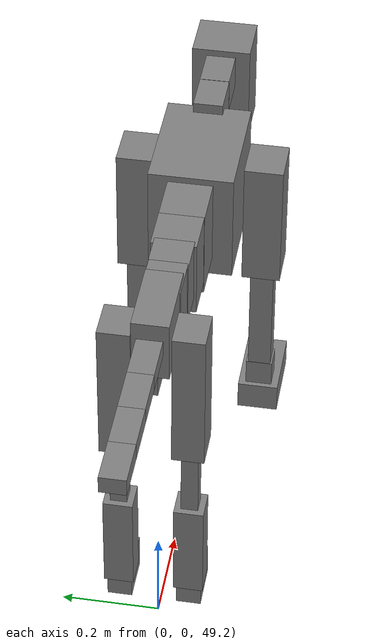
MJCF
<mujoco model="dog">

    <default>
        <joint armature="0.02" stiffness="1" damping="0.2" limited="true"/>
        <geom condim="3" friction="1 0.05 0.05" margin="0.01"/>
        <motor ctrllimited="true" ctrlrange="-1.0 1.0" forcelimited="true" gear="50"/>
    </default>

    <compiler inertiafromgeom="true" angle="radian"/>

    <option timestep="0.016" iterations="50" tolerance="1e-10" solver="Newton" jacobian="dense" cone="pyramidal"/>

    <size nconmax="20000" njmax="60000" nstack="5000000"/>
    <visual>
        <map force="0.1" zfar="30"/>
        <rgba haze="0.15 0.25 0.35 1"/>
        <quality shadowsize="2048"/>
        <global offwidth="800" offheight="800"/>
    </visual>

    <asset>
        <texture type="skybox" builtin="gradient" rgb1="0.3 0.5 0.7" rgb2="0 0 0" width="512" height="512"/>
        <texture name="texplane" type="2d" builtin="checker" rgb1=".2 .3 .4" rgb2=".1 0.15 0.2" width="512" height="512"
                 mark="cross" markrgb=".8 .8 .8"/>
        <texture name="texgeom" type="cube" builtin="flat" mark="cross" width="127" height="1278" rgb1="0.8 0.6 0.4"
                 rgb2="0.8 0.6 0.4" markrgb="1 1 1" random="0.01"/>

        <material name="matplane" reflectance="0.3" texture="texplane" texrepeat="1 1" texuniform="true"/>
        <material name="matgeom" texture="texgeom" texuniform="true" rgba="0.8 0.6 .4 1"/>
    </asset>

    <worldbody>
        <geom name="floor" pos="0 0 0" size="0 0 .25" type="plane" material="matplane" condim="3"/>

        <light directional="false" diffuse=".2 .2 .2" specular="0 0 0" pos="0 0 5" dir="0 0 -1" castshadow="false"/>
        <light mode="targetbodycom" target="torso" directional="false" diffuse=".8 .8 .8" specular="0.3 0.3 0.3"
               pos="0 0 4.0" dir="0 0 -1"/>

        <body name="root" pos="0 0 50">
            <freejoint name="root_1"/>
            <geom type="box" pos="0 0 -0.02" size="0.0774  0.0358  0.063" density="2030"/>

            <body name="spine1" pos="0.054 0 0">
                <joint name="spine1_y" axis="0 1 0" range="0 0.7" limited="true"/>
                <geom type="box" pos="0.02375 0 -0.03" size="0.04375  0.0375  0.05985" density="2030"/>

                <body name="spine2" pos="0.0612 0 0">
                    <joint name="spine2_y" axis="0 1 0" range="-0.15 0.15" limited="true"/>
                    <geom type="box" pos="0.03555  0  -0.04" size="0.04055  0.039  0.06615" density="2030"/>

                    <body name="spine3" pos="0.0730 0 0">
                        <joint name="spine3_y" axis="0 1 0" range="-0.15 0.15" limited="true"/>
                        <geom type="box" pos="0.03555  0  -0.057" size="0.04555  0.0445  0.081" density="2030"/>

                        <body name="spine4" pos="0.0780 0 0">
                            <joint name="spine4_y" axis="0 1 0" range="-0.15 0.15" limited="true"/>
                            <geom type="box" pos="0.05265  0  -0.07" size="0.05265  0.045  0.09135" density="2030"/>

                            <body name="torso" pos="0.1082 0 0">
                                <joint name="torso_y" axis="0 1 0" range="-0.15 0.15" limited="true"/>
                                <geom type="box" pos="0.11925  0  -0.085" size="0.11925  0.085  0.11745"
                                      density="2030"/>

                                <body name="neck1" pos="0.2160  0   0.0180">
                                    <joint name="neck1_y" axis="0 1 0" range="-1.2  -1" limited="true"/>
                                    <geom type="box" pos="0.0423  0  0" size="0.0423  0.03  0.036" density="2325"/>

                                    <body name="neck2" pos="0.0853  0  0">
                                        <joint name="neck2_y" axis="0 1 0" range="0.1  0" limited="true"/>
                                        <geom type="box" pos="0.0423  0  0" size="0.0423  0.03  0.036" density="2325"/>

                                        <body name="head" pos="0.0853  0  0">
                                            <joint name="head_y" axis="0 1 0" range="-0.3  -0.2" limited="true"/>
                                            <geom type="box" pos="0.0531  0  -0.055" size="0.0531  0.06  0.1044"
                                                  density="4030"/>

                                        </body>
                                    </body>
                                </body>

                                <body name="front_shoulder" pos="0.156  0   -0.0480">
                                    <joint name="front_shoulder_y" axis="0 1 0" range="-1 1.5" limited="true"/>
                                    <geom type="box" pos="0 0.13 -0.1107" size="0.0461  0.0394  0.1374" density="1158"/>
                                    <geom type="box" pos="0 -0.13 -0.1107" size="0.0461  0.0394  0.1374"
                                          density="1158"/>

                                    <body name="front_elbow" pos="0  0  -0.2214">
                                        <joint name="front_elbow_y" axis="0 1 0" range="-2 0" limited="true"/>
                                        <geom type="box" pos="0 0.13 -0.1461" size="0.0235  0.0240  0.1461"
                                              density="1081"/>
                                        <geom type="box" pos="0 -0.13 -0.1461" size="0.0235  0.0240  0.1461"
                                              density="1081"/>

                                        <body name="front_wrist" pos="0  0  -0.2921">
                                            <joint name="front_wrist_y" axis="0 1 0" range="-0.2 0" limited="true"/>
                                            <geom type="box" pos="0 0.13 -0.0300" size="0.0248  0.0275  0.0431"
                                                  density="1664"/>
                                            <geom type="box" pos="0 -0.13 -0.0300" size="0.0248  0.0275  0.0431"
                                                  density="1664"/>

                                            <body name="front_finger_end" pos="0  0  -0.0599">
                                                <joint name="front_finger_y" axis="0 1 0" range="-0.4 1"
                                                       limited="true"/>
                                                <geom type="box" pos="0.0423  0.13  -0.0164"
                                                      size="0.0775  0.0423  0.0314" density="1515"/>
                                                <geom type="box" pos="0.0423  -0.13  -0.0164"
                                                      size="0.0775  0.0423  0.0314" density="1515"/>

                                            </body>

                                        </body>
                                    </body>
                                </body>

                            </body>
                        </body>
                    </body>
                </body>
            </body>

            <body name="back_hip" pos="-0.03 0 -0.018">
                <joint name="back_hip_y" axis="0 1 0" range="-1.5 0.3" limited="true"/>
                <geom type="box" pos="0 0.07 -0.1277" size="0.0402  0.0315  0.1505" density="1154"/>
                <geom type="box" pos="0 -0.07 -0.1277" size="0.0402  0.0315  0.1505" density="1154"/>

                <body name="back_knee" pos="0  0  -0.2554">
                    <joint name="back_knee_y" axis="0 1 0" range="0 2.8" limited="true"/>
                    <geom type="box" pos="0 0.07 -0.0935" size="0.0171  0.0168  0.1090" density="1227"/>
                    <geom type="box" pos="0 -0.07 -0.0935" size="0.0171  0.0168  0.1090" density="1227"/>

                    <body name="back_ankle" pos="0  0  -0.1870">
                        <joint name="back_ankle_y" axis="0 1 0" range="-2.2 0" limited="true"/>
                        <geom type="box" pos="0 0.07 -0.0955" size="0.0295  0.0295  0.1068" density="1284"/>
                        <geom type="box" pos="0 -0.07 -0.0955" size="0.0295  0.0295  0.1068" density="1284"/>

                        <body name="back_toe_end" pos="0  0  -0.1911">
                            <joint name="back_toe_y" axis="0 1 0" range="-0.4 1" limited="true"/>
                            <geom type="box" pos="0.0246  0.07  -0.0223" size="0.0452  0.0246  0.0373" density="1515"/>
                            <geom type="box" pos="0.0246  -0.07  -0.0223" size="0.0452  0.0246  0.0373" density="1515"/>

                        </body>
                    </body>
                </body>
            </body>

            <body name="tail1" pos="-0.074 0 -0.006">
                <joint name="tail1_y" axis="0 1 0" range="-0.2 0.2" limited="true"/>
                <geom type="box" pos="-0.0536  0  0" size="0.045  0.025  0.0175" density="1587"/>

                <body name="tail2" pos="-0.09 0 0">
                    <joint name="tail2_y" axis="0 1 0" range="-0.2 0.2" limited="true"/>
                    <geom type="box" pos="-0.0536  0  0" size="0.045  0.025  0.0175" density="1587"/>

                    <body name="tail3" pos="-0.09 0 0">
                        <joint name="tail3_y" axis="0 1 0" range="-0.2 0.2" limited="true"/>
                        <geom type="box" pos="-0.0536  0  0" size="0.045  0.025  0.0175" density="1587"/>

                        <body name="tail4" pos="-0.09 0 0">
                            <joint name="tail4_y" axis="0 1 0" range="-0.2 0.2" limited="true"/>
                            <geom type="box" pos="-0.0536  0  0" size="0.045  0.025  0.0175" density="1587"/>

                        </body>
                    </body>
                </body>
            </body>
        </body>
    </worldbody>

    <actuator>
        <motor joint="spine1_y" forcerange="-150 150     "/>
        <motor joint="spine2_y" forcerange="-150 150     "/>
        <motor joint="spine3_y" forcerange="-150 150     "/>
        <motor joint="spine4_y" forcerange="-150 150     "/>
        <motor joint="torso_y" forcerange="-150 150     "/>
        <motor joint="neck1_y" forcerange="-100 100       "/>
        <motor joint="neck2_y" forcerange="-100 100       "/>
        <motor joint="head_y" forcerange="-150 150       "/>
        <motor joint="front_shoulder_y" forcerange="-176.98 185.42"/>
        <motor joint="front_elbow_y" forcerange="-139.40 135.00"/>
        <motor joint="front_wrist_y" forcerange="-123.48 96.55"/>
        <motor joint="front_finger_y" forcerange="-97.23 88.19"/>
        <motor joint="back_hip_y" forcerange="-288.62 331.27"/>
        <motor joint="back_knee_y" forcerange="-212.61 232.27"/>
        <motor joint="back_angle_y" forcerange="-231.34 141.38"/>
        <motor joint="back_toe_y" forcerange="-25.81 91.26"/>
        <motor joint="tail1_y" forcerange="-50 50     "/>
        <motor joint="tail2_y" forcerange="-50 50     "/>
        <motor joint="tail3_y" forcerange="-50 50     "/>
        <motor joint="tail4_y" forcerange="-50 50     "/>
    </actuator>
</mujoco>
